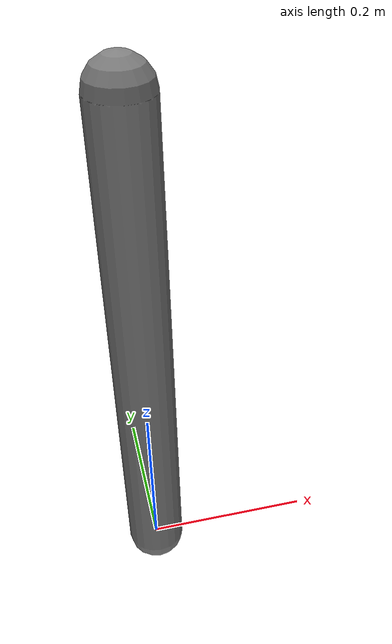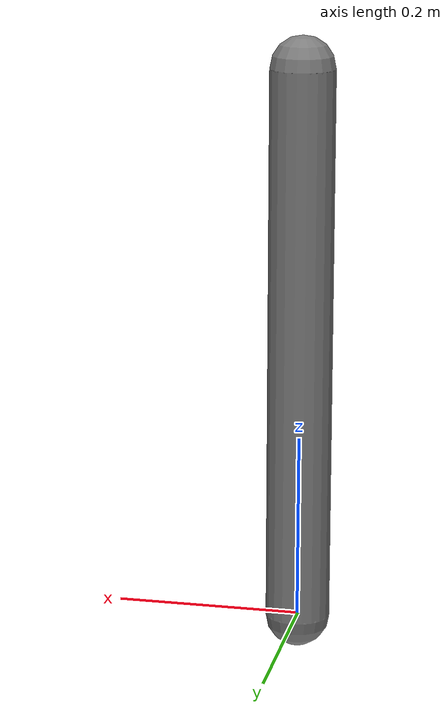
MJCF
<mujoco model="LQR inverted pendulum">
  <option timestep="0.005" integrator="implicitfast"/>
  <worldbody>
    <body>
      <joint name="hinge" axis="0 1 0" damping=".02" armature=".01"/>
      <geom type="capsule" fromto="0 0 0 0 0 .6" size=".035" mass="1"/>
    </body>
  </worldbody>
  <actuator><motor joint="hinge" ctrlrange="-10 10" ctrllimited="true"/></actuator>
</mujoco>
